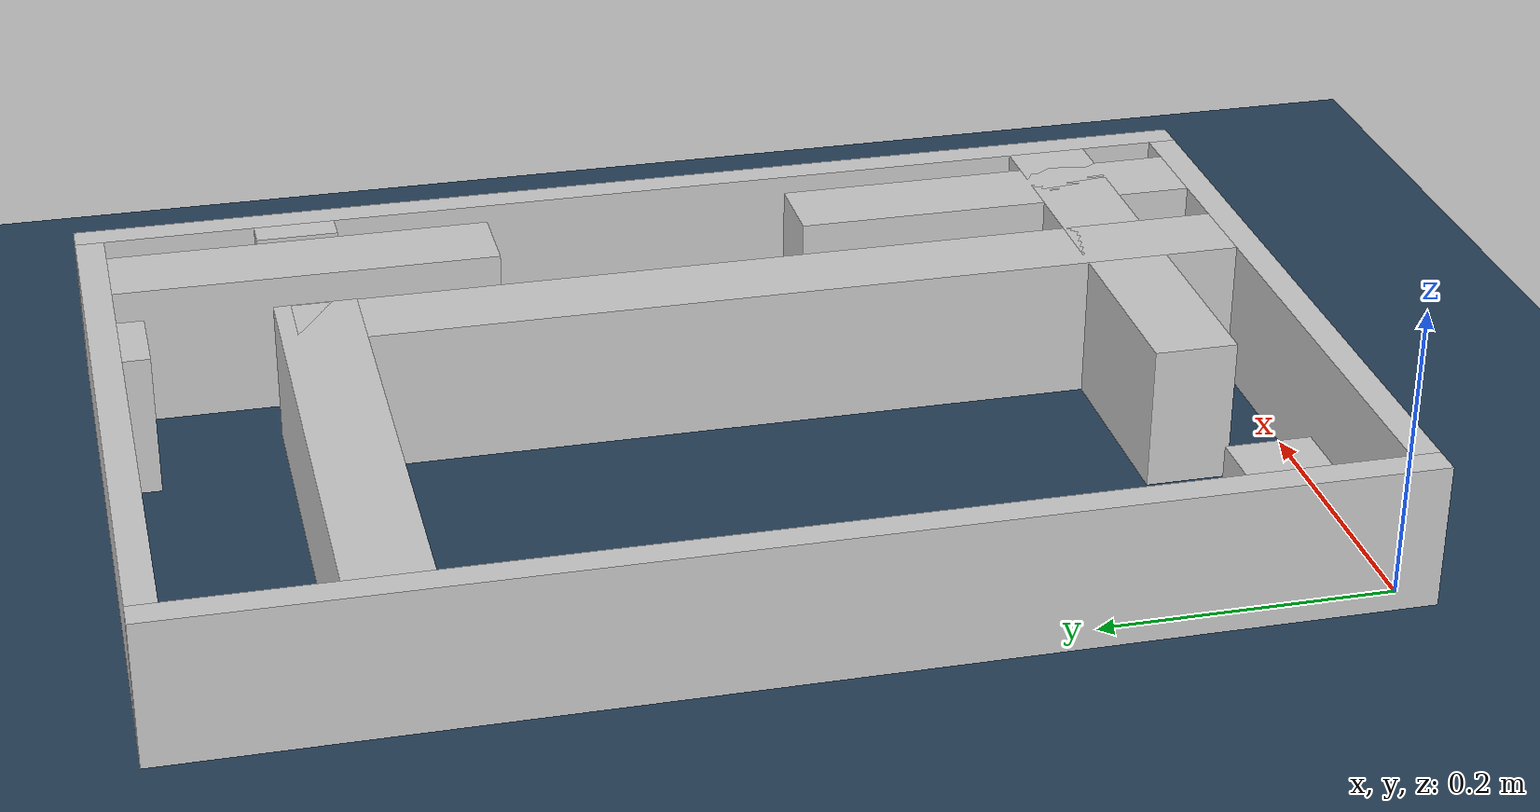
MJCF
<?xml version="1.0" ?>
<mujoco model="generated_real_template">
  <compiler angle="degree"/>
  <option timestep="0.002" integrator="implicitfast" iterations="100" cone="elliptic"/>
  <default>
    <geom density="1"/>
  </default>
  <asset>
    <texture builtin="gradient" height="3072" rgb1="0.3 0.5 0.7" rgb2="0 0 0" type="skybox" width="512"/>
    <texture builtin="checker" height="300" mark="edge" markrgb="0.8 0.8 0.8" name="groundplane" rgb1="0.2 0.3 0.4" rgb2="0.1 0.2 0.3" type="2d" width="300"/>
    <material name="groundplane" reflectance="0.2" texrepeat="5 5" texture="groundplane" texuniform="true"/>
  </asset>
  <worldbody>
    <light dir="0 0 -1" directional="true" pos="0 0 1.5"/>
    <geom name="floor" type="plane" condim="4" friction="0.5 0.005 0.001" material="groundplane" size="0 0 0.05"/>
    <body name="walls">
      <geom name="wall_boundary_left" type="box" condim="4" friction="1.0 0.005 0.0001" rgba="0.8 0.8 0.8 1" pos="-0.010000 0.387500 0.050000" euler="0 0 0.000000" size="0.010000 0.407500 0.050000"/>
      <geom name="wall_boundary_right" type="box" condim="4" friction="1.0 0.005 0.0001" rgba="0.8 0.8 0.8 1" pos="0.500000 0.387500 0.050000" euler="0 0 0.000000" size="0.010000 0.407500 0.050000"/>
      <geom name="wall_boundary_bottom" type="box" condim="4" friction="1.0 0.005 0.0001" rgba="0.8 0.8 0.8 1" pos="0.245000 -0.010000 0.050000" euler="0 0 0.000000" size="0.245000 0.010000 0.050000"/>
      <geom name="wall_boundary_top" type="box" condim="4" friction="1.0 0.005 0.0001" rgba="0.8 0.8 0.8 1" pos="0.245000 0.785000 0.050000" euler="0 0 0.000000" size="0.245000 0.010000 0.050000"/>
      <geom name="wall_inner_1_1" type="box" condim="4" friction="1.0 0.005 0.0001" rgba="0.8 0.8 0.8 1" pos="0.181363 0.641085 0.050000" euler="0 0 0.000000" size="0.181363 0.028500 0.050000"/>
      <geom name="wall_inner_1_2" type="box" condim="4" friction="1.0 0.005 0.0001" rgba="0.8 0.8 0.8 1" pos="0.479585 0.641085 0.050000" euler="0 0 0.000000" size="0.010415 0.028500 0.050000"/>
      <geom name="wall_inner_2_1" type="box" condim="4" friction="1.0 0.005 0.0001" rgba="0.8 0.8 0.8 1" pos="0.333493 0.328829 0.050000" euler="0 0 90.000000" size="0.328829 0.028500 0.050000"/>
      <geom name="wall_inner_2_2" type="box" condim="4" friction="1.0 0.005 0.0001" rgba="0.8 0.8 0.8 1" pos="0.333493 0.765664 0.050000" euler="0 0 90.000000" size="0.009336 0.028500 0.050000"/>
      <geom name="wall_inner_3_1" type="box" condim="4" friction="1.0 0.005 0.0001" rgba="0.8 0.8 0.8 1" pos="0.434735 0.144127 0.050000" euler="0 0 90.000000" size="0.144127 0.028500 0.050000"/>
      <geom name="wall_inner_3_2" type="box" condim="4" friction="1.0 0.005 0.0001" rgba="0.8 0.8 0.8 1" pos="0.434735 0.640680 0.050000" euler="0 0 90.000000" size="0.134320 0.028500 0.050000"/>
      <geom name="wall_inner_4_1" type="box" condim="4" friction="1.0 0.005 0.0001" rgba="0.8 0.8 0.8 1" pos="0.018301 0.080523 0.050000" euler="0 0 0.000000" size="0.018301 0.028500 0.050000"/>
      <geom name="wall_inner_4_2" type="box" condim="4" friction="1.0 0.005 0.0001" rgba="0.8 0.8 0.8 1" pos="0.327666 0.080523 0.050000" euler="0 0 0.000000" size="0.162334 0.028500 0.050000"/>
    </body>
  </worldbody>
</mujoco>
